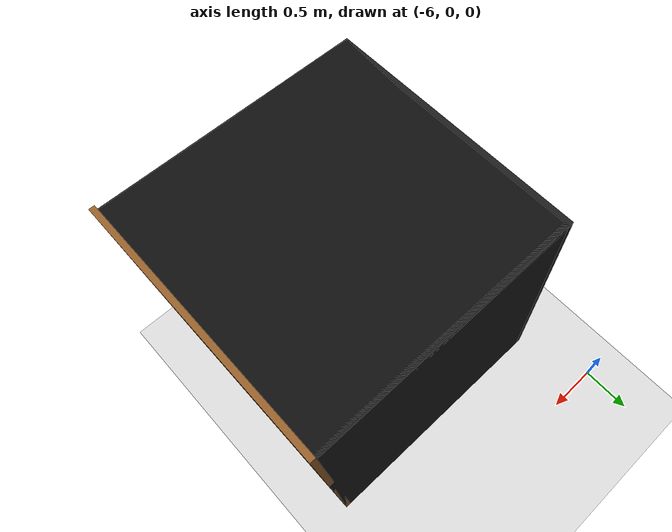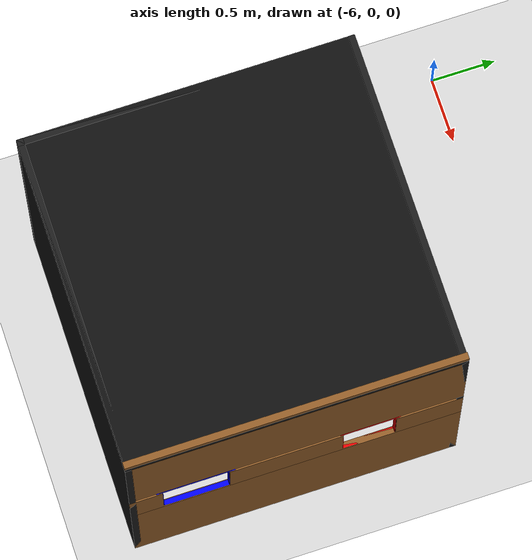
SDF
<sdf version="1.7">
 <world name="default">
  <model name="ground_plane">
   <static>1</static>
   <link name="link">
    <collision name="collision">
     <geometry><plane><normal>0 0 1</normal><size>100 100</size></plane></geometry>
     <surface>
      <contact><collide_bitmask>65535</collide_bitmask></contact>
      <friction><ode><mu>100</mu><mu2>50</mu2></ode></friction>
     </surface>
    </collision>
    <visual name="visual">
     <cast_shadows>0</cast_shadows>
     <geometry><plane><normal>0 0 1</normal><size>100 100</size></plane></geometry>
     <material>
      <script><uri>file://media/materials/scripts/gazebo.material</uri><name>Gazebo/Grey</name></script>
     </material>
    </visual>
   </link>
  </model>
  <model name="dark_room">
   <static>1</static>
   <link name="front_bottom">
    <pose>-1.225 0 0.525 0 -0 0</pose>
    <visual name="vis">
     <geometry><box><size>0.05 2.5 1.05</size></box></geometry>
     <material><ambient>0.55 0.35 0.15 1</ambient><diffuse>0.55 0.35 0.15 1</diffuse></material>
    </visual>
    <collision name="col"><geometry><box><size>0.05 2.5 1.05</size></box></geometry></collision>
   </link>
   <link name="front_top">
    <pose>-1.225 0 2.025 0 -0 0</pose>
    <visual name="vis">
     <geometry><box><size>0.05 2.5 1.05</size></box></geometry>
     <material><ambient>0.55 0.35 0.15 1</ambient><diffuse>0.55 0.35 0.15 1</diffuse></material>
    </visual>
    <collision name="col"><geometry><box><size>0.05 2.5 1.05</size></box></geometry></collision>
   </link>
   <link name="front_left">
    <pose>-1.225 -1 1.25 0 -0 0</pose>
    <visual name="vis">
     <geometry><box><size>0.05 0.5 0.4</size></box></geometry>
     <material><ambient>0.55 0.35 0.15 1</ambient><diffuse>0.55 0.35 0.15 1</diffuse></material>
    </visual>
    <collision name="col"><geometry><box><size>0.05 0.5 0.4</size></box></geometry></collision>
   </link>
   <link name="front_middle">
    <pose>-1.225 0.075 1.25 0 -0 0</pose>
    <visual name="vis">
     <geometry><box><size>0.05 0.85 0.4</size></box></geometry>
     <material><ambient>0.55 0.35 0.15 1</ambient><diffuse>0.55 0.35 0.15 1</diffuse></material>
    </visual>
    <collision name="col"><geometry><box><size>0.05 0.85 0.4</size></box></geometry></collision>
   </link>
   <link name="front_right">
    <pose>-1.225 1.125 1.25 0 -0 0</pose>
    <visual name="vis">
     <geometry><box><size>0.05 0.25 0.4</size></box></geometry>
     <material><ambient>0.55 0.35 0.15 1</ambient><diffuse>0.55 0.35 0.15 1</diffuse></material>
    </visual>
    <collision name="col"><geometry><box><size>0.05 0.25 0.4</size></box></geometry></collision>
   </link>
   <link name="red_win_top">
    <pose>-1.225 -0.55 1.475 0 -0 0</pose>
    <visual name="vis">
     <geometry><box><size>0.04 0.44 0.05</size></box></geometry>
     <material><ambient>1 0 0 1</ambient><diffuse>1 0 0 1</diffuse></material>
    </visual>
    <collision name="col"><geometry><box><size>0.04 0.44 0.05</size></box></geometry></collision>
   </link>
   <link name="red_win_bot">
    <pose>-1.225 -0.55 1.025 0 -0 0</pose>
    <visual name="vis">
     <geometry><box><size>0.04 0.44 0.05</size></box></geometry>
     <material><ambient>1 0 0 1</ambient><diffuse>1 0 0 1</diffuse></material>
    </visual>
    <collision name="col"><geometry><box><size>0.04 0.44 0.05</size></box></geometry></collision>
   </link>
   <link name="red_win_left">
    <pose>-1.225 -0.77 1.25 0 -0 0</pose>
    <visual name="vis">
     <geometry><box><size>0.04 0.05 0.4</size></box></geometry>
     <material><ambient>1 0 0 1</ambient><diffuse>1 0 0 1</diffuse></material>
    </visual>
    <collision name="col"><geometry><box><size>0.04 0.05 0.4</size></box></geometry></collision>
   </link>
   <link name="red_win_right">
    <pose>-1.225 -0.33 1.25 0 -0 0</pose>
    <visual name="vis">
     <geometry><box><size>0.04 0.05 0.4</size></box></geometry>
     <material><ambient>1 0 0 1</ambient><diffuse>1 0 0 1</diffuse></material>
    </visual>
    <collision name="col"><geometry><box><size>0.04 0.05 0.4</size></box></geometry></collision>
   </link>
   <link name="blue_win_top">
    <pose>-1.225 0.75 1.475 0 -0 0</pose>
    <visual name="vis">
     <geometry><box><size>0.04 0.54 0.05</size></box></geometry>
     <material><ambient>0 0 1 1</ambient><diffuse>0 0 1 1</diffuse></material>
    </visual>
    <collision name="col"><geometry><box><size>0.04 0.54 0.05</size></box></geometry></collision>
   </link>
   <link name="blue_win_bot">
    <pose>-1.225 0.75 1.025 0 -0 0</pose>
    <visual name="vis">
     <geometry><box><size>0.04 0.54 0.05</size></box></geometry>
     <material><ambient>0 0 1 1</ambient><diffuse>0 0 1 1</diffuse></material>
    </visual>
    <collision name="col"><geometry><box><size>0.04 0.54 0.05</size></box></geometry></collision>
   </link>
   <link name="blue_win_left">
    <pose>-1.225 0.48 1.25 0 -0 0</pose>
    <visual name="vis">
     <geometry><box><size>0.04 0.05 0.4</size></box></geometry>
     <material><ambient>0 0 1 1</ambient><diffuse>0 0 1 1</diffuse></material>
    </visual>
    <collision name="col"><geometry><box><size>0.04 0.05 0.4</size></box></geometry></collision>
   </link>
   <link name="blue_win_right">
    <pose>-1.225 1.02 1.25 0 -0 0</pose>
    <visual name="vis">
     <geometry><box><size>0.04 0.05 0.4</size></box></geometry>
     <material><ambient>0 0 1 1</ambient><diffuse>0 0 1 1</diffuse></material>
    </visual>
    <collision name="col"><geometry><box><size>0.04 0.05 0.4</size></box></geometry></collision>
   </link>
   <link name="wall_back">
    <pose>1.225 0 1.25 0 -0 0</pose>
    <visual name="vis">
     <geometry><box><size>0.05 2.5 2.5</size></box></geometry>
     <material><ambient>0.1 0.1 0.1 1</ambient><diffuse>0.1 0.1 0.1 1</diffuse></material>
    </visual>
    <collision name="col"><geometry><box><size>0.05 2.5 2.5</size></box></geometry></collision>
   </link>
   <link name="wall_left">
    <pose>0 -1.225 1.25 0 -0 0</pose>
    <visual name="vis">
     <geometry><box><size>2.5 0.05 2.5</size></box></geometry>
     <material><ambient>0.1 0.1 0.1 1</ambient><diffuse>0.1 0.1 0.1 1</diffuse></material>
    </visual>
    <collision name="col"><geometry><box><size>2.5 0.05 2.5</size></box></geometry></collision>
   </link>
   <link name="wall_right">
    <pose>0 1.225 1.25 0 -0 0</pose>
    <visual name="vis">
     <geometry><box><size>2.5 0.05 2.5</size></box></geometry>
     <material><ambient>0.1 0.1 0.1 1</ambient><diffuse>0.1 0.1 0.1 1</diffuse></material>
    </visual>
    <collision name="col"><geometry><box><size>2.5 0.05 2.5</size></box></geometry></collision>
   </link>
   <link name="ceiling">
    <pose>0 0 2.475 0 -0 0</pose>
    <visual name="vis">
     <geometry><box><size>2.5 2.5 0.05</size></box></geometry>
     <material><ambient>0.05 0.05 0.05 1</ambient><diffuse>0.05 0.05 0.05 1</diffuse></material>
    </visual>
    <collision name="col"><geometry><box><size>2.5 2.5 0.05</size></box></geometry></collision>
   </link>
   <link name="baby_1">
    <pose>0.5 0.3 0.2 0 -0 0</pose>
    <visual name="vis">
     <geometry><cylinder><radius>0.1</radius><length>0.35</length></cylinder></geometry>
     <material><ambient>0.9 0.8 0.7 1</ambient></material>
    </visual>
   </link>
   <link name="baby_2">
    <pose>-0.3 -0.4 0.2 0 -0 0</pose>
    <visual name="vis">
     <geometry><cylinder><radius>0.1</radius><length>0.35</length></cylinder></geometry>
     <material><ambient>0.9 0.8 0.7 1</ambient></material>
    </visual>
   </link>
   <pose>-4.5 -2 0 0 -0 3.14159</pose>
   <light name="interior_light" type="point">
    <pose>0 0 2.2 0 0 0</pose>
    <diffuse>0.05 0.05 0.05 1</diffuse>
    <specular>0 0 0 1</specular>
    <attenuation><range>3</range><linear>0.5</linear><constant>0.8</constant></attenuation>
    <cast_shadows>0</cast_shadows>
   </light>
  </model>
 </world>
</sdf>
